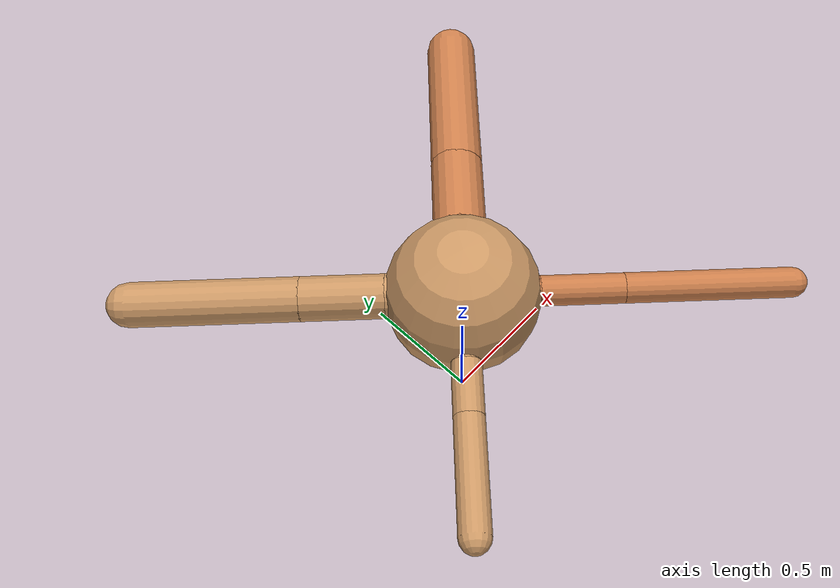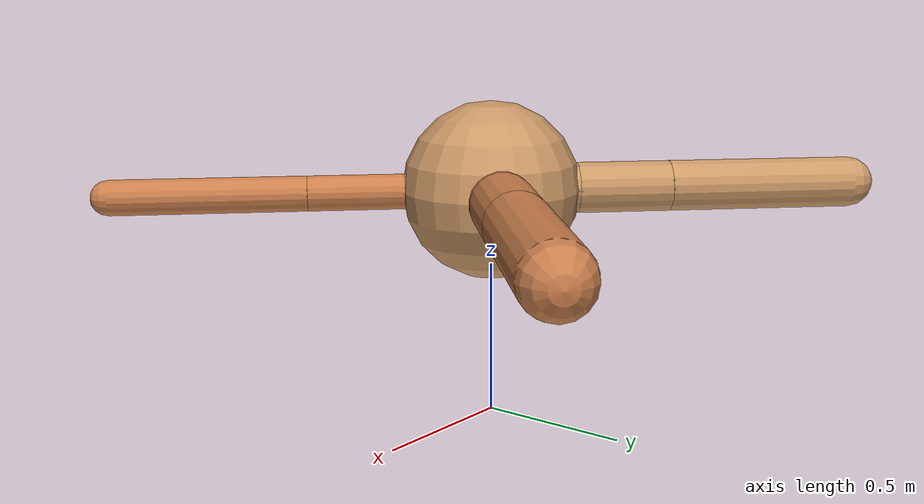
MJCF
<?xml version="1.0" ?>
<mujoco model="ant">

	<compiler angle="degree" coordinate="local" inertiafromgeom="true"/>

	<option integrator="RK4" timestep="0.01"/>

	<custom>

		<numeric data="0.0 0.0 0.55 1.0 0.0 0.0 0.0 0.0 1.0 0.0 -1.0 0.0 -1.0 0.0 1.0" name="init_qpos"/>

	</custom>

	<default>

		<joint armature="1" damping="1" limited="true"/>

		<geom conaffinity="0" condim="3" density="5.0" friction="1.5 0.1 0.1" margin="0.01" rgba="0.8 0.6 0.4 1"/>

	</default>

	<worldbody>

		<body name="torso" pos="0 0 0.75">

			<geom name="torso_geom" pos="0 0 0" size="0.28968252818405354" type="sphere"/>

			<!--joint armature="0" damping="0" limited="false" margin="0.01" name="root" pos="0 0 0" type="free"/-->

			<body name="front_left_leg" pos="0 0 0">

				<geom fromto="0 0 0 0.2 0.2 0" name="aux_1_geom" size="0.10309432474508676" type="capsule" rgba=".8 .5 .3 1"/>

				<body name="aux_1" pos="0.2 0.2 0">

					<joint axis="0 0 1" name="hip_1" pos="0.0 0.0 0.0" range="-40 40" type="hinge"/>

					<geom fromto="0 0 0 0.22393548690401732 0.22393548690401732 0" name="left_leg_geom" size="0.10309432474508676" type="capsule" rgba=".8 .5 .3 1"/>

					<body pos="0.22393548690401732 0.22393548690401732 0" name="front_left_foot">

						<joint axis="-1 1 0" name="ankle_1" pos="0.0 0.0 0.0" range="30 100" type="hinge"/>

						<geom fromto="0 0 0 0.44787097380803464 0.44787097380803464 0" name="left_ankle_geom" size="0.10309432474508676" type="capsule" rgba=".8 .5 .3 1"/>

					</body>

				</body>

			</body>

			<body name="front_right_leg" pos="0 0 0">

				<geom fromto="0 0 0 -0.2 0.2 0" name="aux_2_geom" size="0.08287996964237365" type="capsule"/>

				<body name="aux_2" pos="-0.2 0.2 0">

					<joint axis="0 0 1" name="hip_2" pos="0.0 0.0 0.0" range="-40 40" type="hinge"/>

					<geom fromto="0 0 0 -0.2180302523413909 0.2180302523413909 0" name="right_leg_geom" size="0.08287996964237365" type="capsule"/>

					<body pos="-0.2180302523413909 0.2180302523413909 0" name="front_right_foot">

						<joint axis="1 1 0" name="ankle_2" pos="0.0 0.0 0.0" range="-100 -30" type="hinge"/>

						<geom fromto="0 0 0 -0.4360605046827818 0.4360605046827818 0" name="right_ankle_geom" size="0.08287996964237365" type="capsule"/>

					</body>

				</body>

			</body>

			<body name="left_back_leg" pos="0 0 0">

				<geom fromto="0 0 0 -0.2 -0.2 0" name="aux_3_geom" size="0.05607863867399186" type="capsule"/>

				<body name="aux_3" pos="-0.2 -0.2 0">

					<joint axis="0 0 1" name="hip_3" pos="0.0 0.0 0.0" range="-40 40" type="hinge"/>

					<geom fromto="0 0 0 -0.1419796684810772 -0.1419796684810772 0" name="back_leg_geom" size="0.05607863867399186" type="capsule"/>

					<body pos="-0.1419796684810772 -0.1419796684810772 0" name="left_back_foot">

						<joint axis="-1 1 0" name="ankle_3" pos="0.0 0.0 0.0" range="-100 -30" type="hinge"/>

						<geom fromto="0 0 0 -0.2839593369621544 -0.2839593369621544 0" name="third_ankle_geom" size="0.05607863867399186" type="capsule"/>

					</body>

				</body>

			</body>

			<body name="right_back_leg" pos="0 0 0">

				<geom fromto="0 0 0 0.2 -0.2 0" name="aux_4_geom" size="0.05665244004123382" type="capsule" rgba=".8 .5 .3 1"/>

				<body name="aux_4" pos="0.2 -0.2 0">

					<joint axis="0 0 1" name="hip_4" pos="0.0 0.0 0.0" range="-40 40" type="hinge"/>

					<geom fromto="0 0 0 0.21852896868224178 -0.21852896868224178 0" name="rightback_leg_geom" size="0.05665244004123382" type="capsule" rgba=".8 .5 .3 1"/>

					<body pos="0.21852896868224178 -0.21852896868224178 0" name="right_back_foot">

						<joint axis="1 1 0" name="ankle_4" pos="0.0 0.0 0.0" range="30 100" type="hinge"/>

						<geom fromto="0 0 0 0.43705793736448356 -0.43705793736448356 0" name="fourth_ankle_geom" size="0.05665244004123382" type="capsule" rgba=".8 .5 .3 1"/>

					</body>

				</body>

			</body>

		</body>

	</worldbody>

	<actuator>

		<motor ctrllimited="true" ctrlrange="-1.0 1.0" joint="hip_4" gear="150"/>

		<motor ctrllimited="true" ctrlrange="-1.0 1.0" joint="ankle_4" gear="150"/>

		<motor ctrllimited="true" ctrlrange="-1.0 1.0" joint="hip_1" gear="150"/>

		<motor ctrllimited="true" ctrlrange="-1.0 1.0" joint="ankle_1" gear="150"/>

		<motor ctrllimited="true" ctrlrange="-1.0 1.0" joint="hip_2" gear="150"/>

		<motor ctrllimited="true" ctrlrange="-1.0 1.0" joint="ankle_2" gear="150"/>

		<motor ctrllimited="true" ctrlrange="-1.0 1.0" joint="hip_3" gear="150"/>

		<motor ctrllimited="true" ctrlrange="-1.0 1.0" joint="ankle_3" gear="150"/>

	</actuator>

</mujoco>
